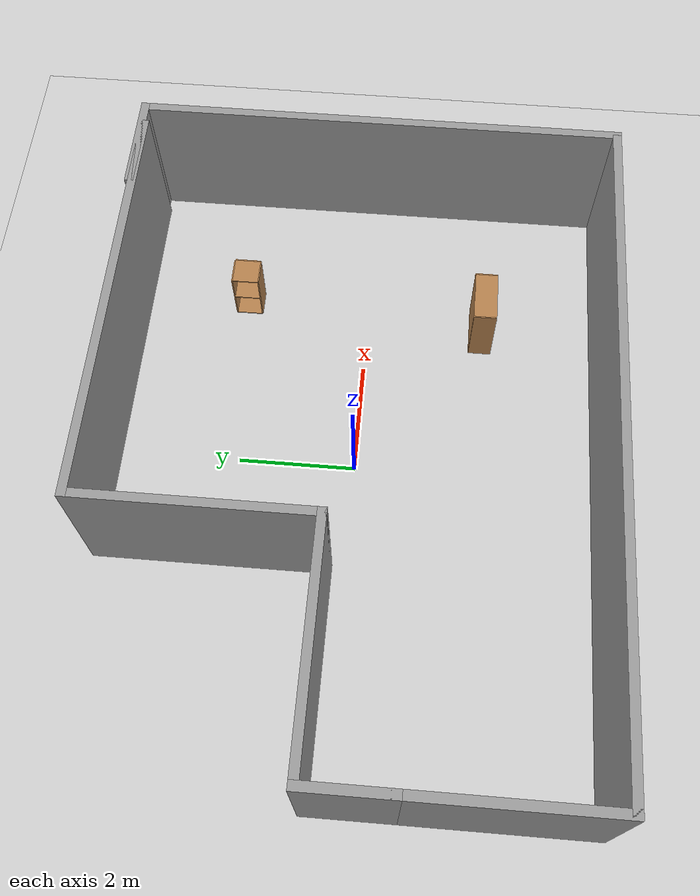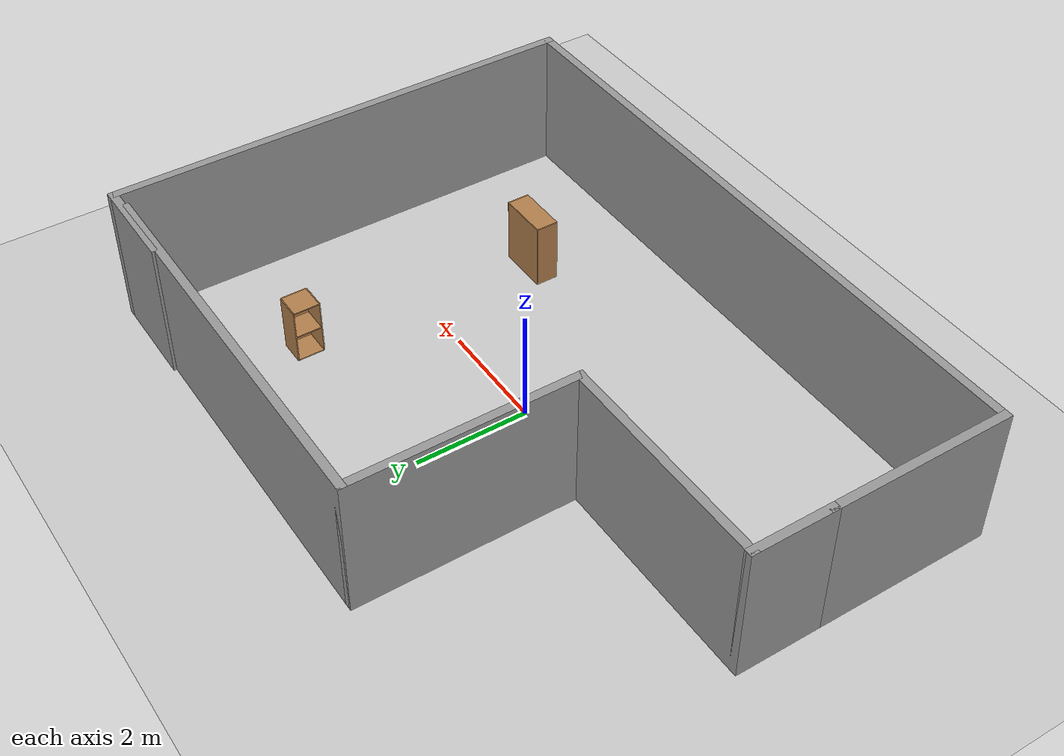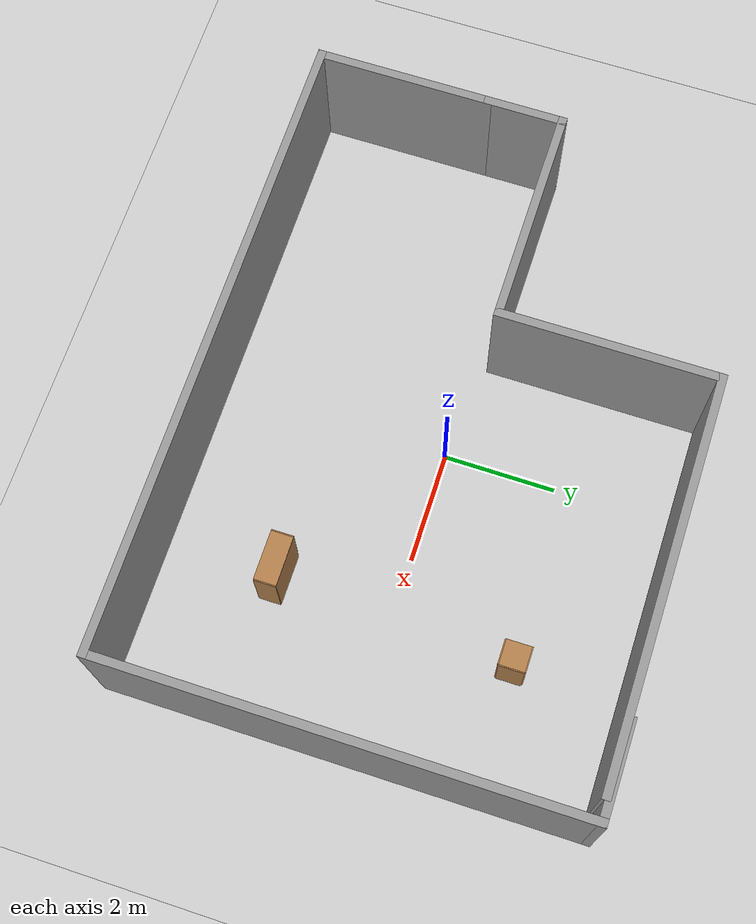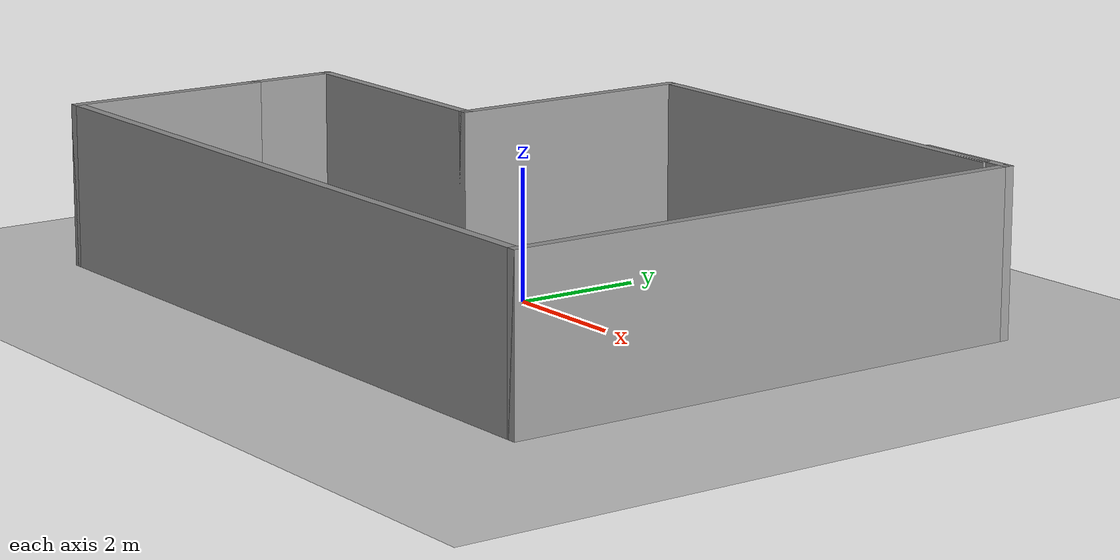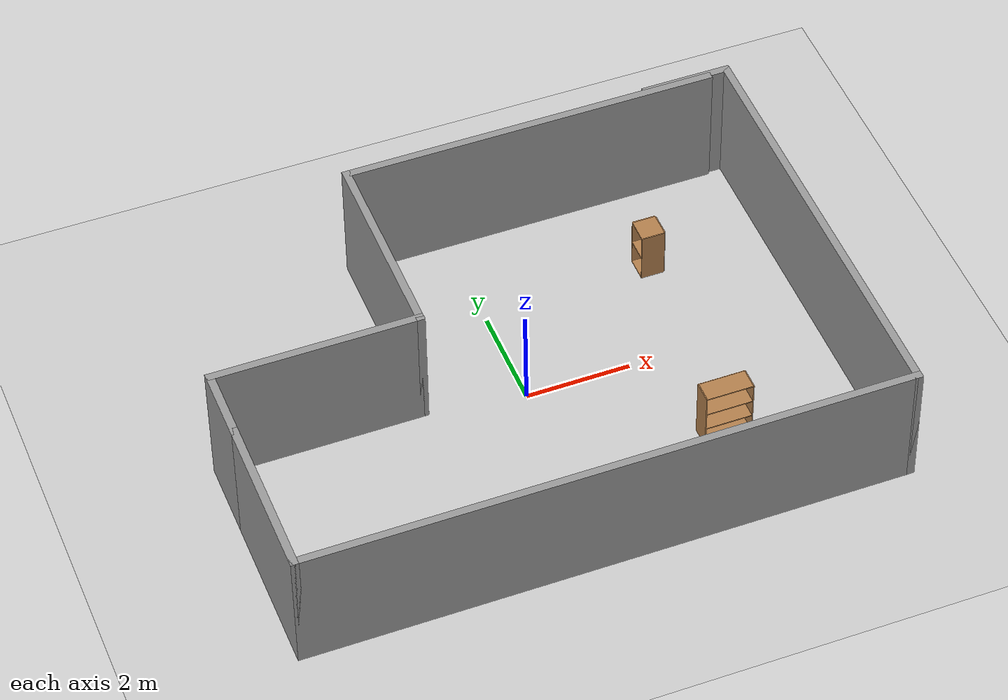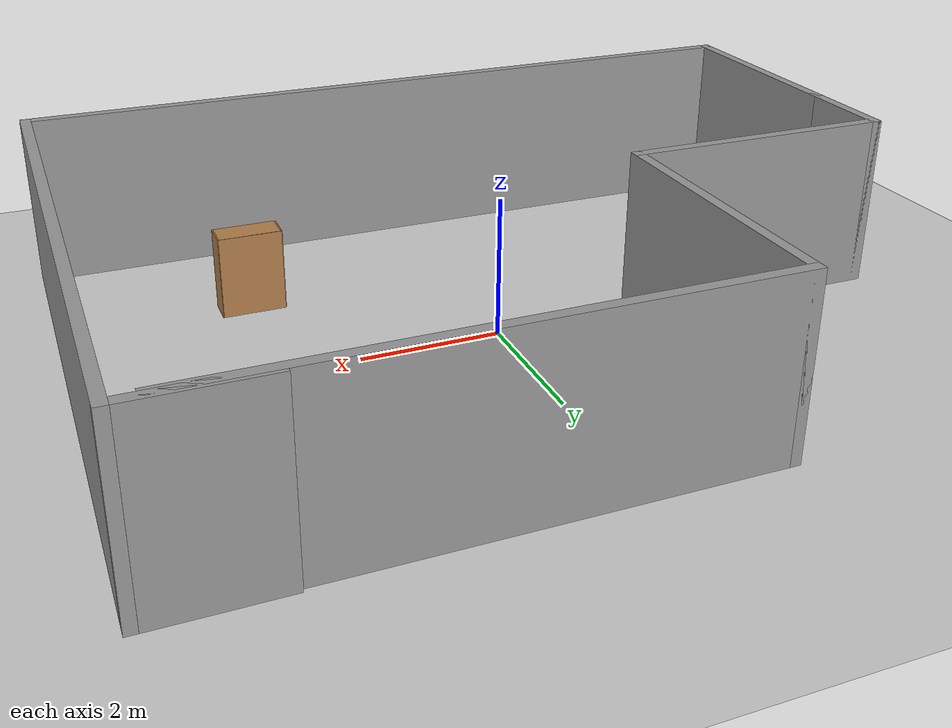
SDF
<sdf version="1.6">
 <world name="default">
  <light name="sun" type="directional">
   <pose>0 0 10 0 -0 0</pose>
   <diffuse>0.8 0.8 0.8 1</diffuse>
   <specular>0.2 0.2 0.2 1</specular>
   <attenuation>
    <range>1000</range>
    <constant>0.9</constant>
    <linear>0.01</linear>
    <quadratic>0.001</quadratic>
   </attenuation>
   <direction>-0.5 0.1 -0.9</direction>
  </light>
  <model name="ground_plane">
   <static>1</static>
   <link name="link">
    <collision name="collision">
     <geometry><plane><normal>0 0 1</normal><size>100 100</size></plane></geometry>
     <surface>
      <contact><collide_bitmask>65535</collide_bitmask></contact>
      <friction><ode><mu>100</mu><mu2>50</mu2></ode></friction>
     </surface>
    </collision>
    <visual name="visual">
     <cast_shadows>0</cast_shadows>
     <geometry><plane><normal>0 0 1</normal><size>100 100</size></plane></geometry>
     <material>
      <script><uri>file://media/materials/scripts/gazebo.material</uri><name>Gazebo/Grey</name></script>
     </material>
    </visual>
   </link>
  </model>
  <gravity>0 0 -9.8</gravity>
  <magnetic_field>6e-06 2.3e-05 -4.2e-05</magnetic_field>
  <atmosphere type="adiabatic"/>
  <physics name="default_physics" default="0" type="ode">
   <max_step_size>0.001</max_step_size>
   <real_time_factor>1</real_time_factor>
   <real_time_update_rate>1000</real_time_update_rate>
  </physics>
  <scene><ambient>0.4 0.4 0.4 1</ambient><background>0.7 0.7 0.7 1</background><shadows>1</shadows></scene>
  <audio><device>default</device></audio>
  <spherical_coordinates>
   <surface_model>EARTH_WGS84</surface_model>
   <latitude_deg>0</latitude_deg>
   <longitude_deg>0</longitude_deg>
   <elevation>0</elevation>
   <heading_deg>0</heading_deg>
  </spherical_coordinates>
  <model name="area02">
   <pose>-0.042029 0.017893 0 0 -0 0</pose>
   <link name="Wall_0">
    <collision name="Wall_0_Collision">
     <geometry><box><size>3.25 0.15 2.5</size></box></geometry>
     <pose>0 0 1.25 0 -0 0</pose>
    </collision>
    <visual name="Wall_0_Visual">
     <pose>0 0 1.25 0 -0 0</pose>
     <geometry><box><size>3.25 0.15 2.5</size></box></geometry>
     <material>
      <script><uri>file://media/materials/scripts/gazebo.material</uri><name>Gazebo/Grey</name></script>
      <ambient>1 1 1 1</ambient>
     </material>
     <meta><layer>0</layer></meta>
    </visual>
    <pose>-5.675 -2.625 0 0 -0 -1.5708</pose>
   </link>
   <link name="Wall_1">
    <collision name="Wall_1_Collision">
     <geometry><box><size>11.5 0.15 2.5</size></box></geometry>
     <pose>0 0 1.25 0 -0 0</pose>
    </collision>
    <visual name="Wall_1_Visual">
     <pose>0 0 1.25 0 -0 0</pose>
     <geometry><box><size>11.5 0.15 2.5</size></box></geometry>
     <material>
      <script><uri>file://media/materials/scripts/gazebo.material</uri><name>Gazebo/Grey</name></script>
      <ambient>1 1 1 1</ambient>
     </material>
     <meta><layer>0</layer></meta>
    </visual>
    <pose>0 -4.175 0 0 -0 0</pose>
   </link>
   <link name="Wall_12">
    <collision name="Wall_12_Collision">
     <geometry><box><size>8.5 0.15 2.5</size></box></geometry>
     <pose>0 0 1.25 0 -0 0</pose>
    </collision>
    <visual name="Wall_12_Visual">
     <pose>0 0 1.25 0 -0 0</pose>
     <geometry><box><size>8.5 0.15 2.5</size></box></geometry>
     <material>
      <script><uri>file://media/materials/scripts/gazebo.material</uri><name>Gazebo/Grey</name></script>
      <ambient>1 1 1 1</ambient>
     </material>
     <meta><layer>0</layer></meta>
    </visual>
    <pose>5.675 0 0 0 -0 1.5708</pose>
   </link>
   <link name="Wall_14">
    <collision name="Wall_14_Collision">
     <geometry><box><size>1.75 0.15 2.5</size></box></geometry>
     <pose>0 0 1.25 0 -0 0</pose>
    </collision>
    <visual name="Wall_14_Visual">
     <pose>0 0 1.25 0 -0 0</pose>
     <geometry><box><size>1.75 0.15 2.5</size></box></geometry>
     <material>
      <script><uri>file://media/materials/scripts/gazebo.material</uri><name>Gazebo/Grey</name></script>
      <ambient>1 1 1 1</ambient>
     </material>
     <meta><layer>0</layer></meta>
    </visual>
    <pose>4.875 4.175 0 0 -0 3.14159</pose>
   </link>
   <link name="Wall_3">
    <collision name="Wall_3_Collision">
     <geometry><box><size>1.5 0.15 2.5</size></box></geometry>
     <pose>0 0 1.25 0 -0 0</pose>
    </collision>
    <visual name="Wall_3_Visual">
     <pose>0 0 1.25 0 -0 0</pose>
     <geometry><box><size>1.5 0.15 2.5</size></box></geometry>
     <material>
      <script><uri>file://media/materials/scripts/gazebo.material</uri><name>Gazebo/Grey</name></script>
      <ambient>1 1 1 1</ambient>
     </material>
     <meta><layer>0</layer></meta>
    </visual>
    <pose>-5.675 -0.4 0 0 -0 1.5708</pose>
   </link>
   <link name="Wall_4">
    <collision name="Wall_4_Collision">
     <geometry><box><size>4 0.15 2.5</size></box></geometry>
     <pose>0 0 1.25 0 -0 0</pose>
    </collision>
    <visual name="Wall_4_Visual">
     <pose>0 0 1.25 0 -0 0</pose>
     <geometry><box><size>4 0.15 2.5</size></box></geometry>
     <material>
      <script><uri>file://media/materials/scripts/gazebo.material</uri><name>Gazebo/Grey</name></script>
      <ambient>1 1 1 1</ambient>
     </material>
     <meta><layer>0</layer></meta>
    </visual>
    <pose>-3.75 0.275 0 0 -0 0</pose>
   </link>
   <link name="Wall_8">
    <collision name="Wall_8_Collision">
     <geometry><box><size>4 0.15 2.5</size></box></geometry>
     <pose>0 0 1.25 0 -0 0</pose>
    </collision>
    <visual name="Wall_8_Visual">
     <pose>0 0 1.25 0 -0 0</pose>
     <geometry><box><size>4 0.15 2.5</size></box></geometry>
     <material>
      <script><uri>file://media/materials/scripts/gazebo.material</uri><name>Gazebo/Grey</name></script>
      <ambient>1 1 1 1</ambient>
     </material>
     <meta><layer>0</layer></meta>
    </visual>
    <pose>-1.825 2.2 0 0 -0 1.5708</pose>
   </link>
   <link name="Wall_9">
    <collision name="Wall_9_Collision">
     <geometry><box><size>7.25 0.15 2.5</size></box></geometry>
     <pose>0 0 1.25 0 -0 0</pose>
    </collision>
    <visual name="Wall_9_Visual">
     <pose>0 0 1.25 0 -0 0</pose>
     <geometry><box><size>7.25 0.15 2.5</size></box></geometry>
     <material>
      <script><uri>file://media/materials/scripts/gazebo.material</uri><name>Gazebo/Grey</name></script>
      <ambient>1 1 1 1</ambient>
     </material>
     <meta><layer>0</layer></meta>
    </visual>
    <pose>1.725 4.125 0 0 -0 0</pose>
   </link>
   <static>1</static>
  </model>
  <model name="bookshelf">
   <static>1</static>
   <link name="link">
    <inertial><mass>1</mass></inertial>
    <collision name="back">
     <pose>0 0.005 0.6 0 -0 0</pose>
     <geometry><box><size>0.9 0.01 1.2</size></box></geometry>
    </collision>
    <visual name="visual1">
     <pose>0 0.005 0.6 0 -0 0</pose>
     <geometry><box><size>0.9 0.01 1.2</size></box></geometry>
     <material>
      <script><uri>file://media/materials/scripts/gazebo.material</uri><name>Gazebo/Wood</name></script>
     </material>
    </visual>
    <collision name="left_side">
     <pose>0.45 -0.195 0.6 0 -0 0</pose>
     <geometry><box><size>0.02 0.4 1.2</size></box></geometry>
    </collision>
    <visual name="visual2">
     <pose>0.45 -0.195 0.6 0 -0 0</pose>
     <geometry><box><size>0.02 0.4 1.2</size></box></geometry>
     <material>
      <script><uri>file://media/materials/scripts/gazebo.material</uri><name>Gazebo/Wood</name></script>
     </material>
    </visual>
    <collision name="right_side">
     <pose>-0.45 -0.195 0.6 0 -0 0</pose>
     <geometry><box><size>0.02 0.4 1.2</size></box></geometry>
    </collision>
    <visual name="visual3">
     <pose>-0.45 -0.195 0.6 0 -0 0</pose>
     <geometry><box><size>0.02 0.4 1.2</size></box></geometry>
     <material>
      <script><uri>file://media/materials/scripts/gazebo.material</uri><name>Gazebo/Wood</name></script>
     </material>
    </visual>
    <collision name="bottom">
     <pose>0 -0.195 0.03 0 -0 0</pose>
     <geometry><box><size>0.88 0.4 0.06</size></box></geometry>
    </collision>
    <visual name="visual4">
     <pose>0 -0.195 0.03 0 -0 0</pose>
     <geometry><box><size>0.88 0.4 0.06</size></box></geometry>
     <material>
      <script><uri>file://media/materials/scripts/gazebo.material</uri><name>Gazebo/Wood</name></script>
     </material>
    </visual>
    <collision name="top">
     <pose>0 -0.195 1.19 0 -0 0</pose>
     <geometry><box><size>0.88 0.4 0.02</size></box></geometry>
    </collision>
    <visual name="visual5">
     <pose>0 -0.195 1.19 0 -0 0</pose>
     <geometry><box><size>0.88 0.4 0.02</size></box></geometry>
     <material>
      <script><uri>file://media/materials/scripts/gazebo.material</uri><name>Gazebo/Wood</name></script>
     </material>
    </visual>
    <collision name="low_shelf">
     <pose>0 -0.195 0.43 0 -0 0</pose>
     <geometry><box><size>0.88 0.4 0.02</size></box></geometry>
    </collision>
    <visual name="visual6">
     <pose>0 -0.195 0.43 0 -0 0</pose>
     <geometry><box><size>0.88 0.4 0.02</size></box></geometry>
     <material>
      <script><uri>file://media/materials/scripts/gazebo.material</uri><name>Gazebo/Wood</name></script>
     </material>
    </visual>
    <collision name="high_shelf">
     <pose>0 -0.195 0.8 0 -0 0</pose>
     <geometry><box><size>0.88 0.4 0.02</size></box></geometry>
    </collision>
    <visual name="visual7">
     <pose>0 -0.195 0.8 0 -0 0</pose>
     <geometry><box><size>0.88 0.4 0.02</size></box></geometry>
     <material>
      <script><uri>file://media/materials/scripts/gazebo.material</uri><name>Gazebo/Wood</name></script>
     </material>
    </visual>
   </link>
   <pose>2.97549 -1.8864 0 0 -0 0</pose>
  </model>
  <model name="cabinet">
   <static>1</static>
   <link name="cabinet_bottom_plate">
    <inertial>
     <pose>0 0 -1 0 -0 0</pose>
     <inertia><ixx>2.05</ixx><ixy>0</ixy><ixz>0</ixz><iyy>2.05</iyy><iyz>0</iyz><izz>2.05</izz></inertia>
     <mass>25</mass>
    </inertial>
    <collision name="cabinet_bottom_plate_geom">
     <pose>0 0 0.01 0 -0 0</pose>
     <geometry><box><size>0.45 0.45 0.02</size></box></geometry>
    </collision>
    <visual name="cabinet_bottom_plate_geom_visual">
     <pose>0 0 0.01 0 -0 0</pose>
     <geometry><box><size>0.45 0.45 0.02</size></box></geometry>
     <material>
      <script><uri>file://media/materials/scripts/gazebo.material</uri><name>Gazebo/Wood</name></script>
     </material>
    </visual>
    <collision name="cabinet_bottom_plate_geom_cabinet_back_plate">
     <pose>0.235 0 0.51 0 -0 0</pose>
     <geometry><box><size>0.02 0.45 1.02</size></box></geometry>
    </collision>
    <visual name="cabinet_bottom_plate_geom_cabinet_back_plate_visual">
     <pose>0.235 0 0.51 0 -0 0</pose>
     <geometry><box><size>0.02 0.45 1.02</size></box></geometry>
     <material>
      <script><uri>file://media/materials/scripts/gazebo.material</uri><name>Gazebo/Wood</name></script>
     </material>
    </visual>
    <collision name="cabinet_bottom_plate_geom_cabinet_left_plate">
     <pose>0 0.235 0.51 0 -0 0</pose>
     <geometry><box><size>0.45 0.02 1.02</size></box></geometry>
    </collision>
    <visual name="cabinet_bottom_plate_geom_cabinet_left_plate_visual">
     <pose>0 0.235 0.51 0 -0 0</pose>
     <geometry><box><size>0.45 0.02 1.02</size></box></geometry>
     <material>
      <script><uri>file://media/materials/scripts/gazebo.material</uri><name>Gazebo/Wood</name></script>
     </material>
    </visual>
    <collision name="cabinet_bottom_plate_geom_cabinet_middle_plate">
     <pose>0 0 0.51 0 -0 0</pose>
     <geometry><box><size>0.45 0.45 0.02</size></box></geometry>
    </collision>
    <visual name="cabinet_bottom_plate_geom_cabinet_middle_plate_visual">
     <pose>0 0 0.51 0 -0 0</pose>
     <geometry><box><size>0.45 0.45 0.02</size></box></geometry>
     <material>
      <script><uri>file://media/materials/scripts/gazebo.material</uri><name>Gazebo/Wood</name></script>
     </material>
    </visual>
    <collision name="cabinet_bottom_plate_geom_cabinet_right_plate">
     <pose>0 -0.235 0.51 0 -0 0</pose>
     <geometry><box><size>0.45 0.02 1.02</size></box></geometry>
    </collision>
    <visual name="cabinet_bottom_plate_geom_cabinet_right_plate_visual">
     <pose>0 -0.235 0.51 0 -0 0</pose>
     <geometry><box><size>0.45 0.02 1.02</size></box></geometry>
     <material>
      <script><uri>file://media/materials/scripts/gazebo.material</uri><name>Gazebo/Wood</name></script>
     </material>
    </visual>
    <collision name="cabinet_bottom_plate_geom_cabinet_top_plate">
     <pose>0 0 1.01 0 -0 0</pose>
     <geometry><box><size>0.45 0.45 0.02</size></box></geometry>
    </collision>
    <visual name="cabinet_bottom_plate_geom_cabinet_top_plate_visual">
     <pose>0 0 1.01 0 -0 0</pose>
     <geometry><box><size>0.45 0.45 0.02</size></box></geometry>
     <material>
      <script><uri>file://media/materials/scripts/gazebo.material</uri><name>Gazebo/Wood</name></script>
     </material>
    </visual>
   </link>
   <pose>3.27604 2.21616 0 0 -0 0</pose>
  </model>
 </world>
</sdf>
